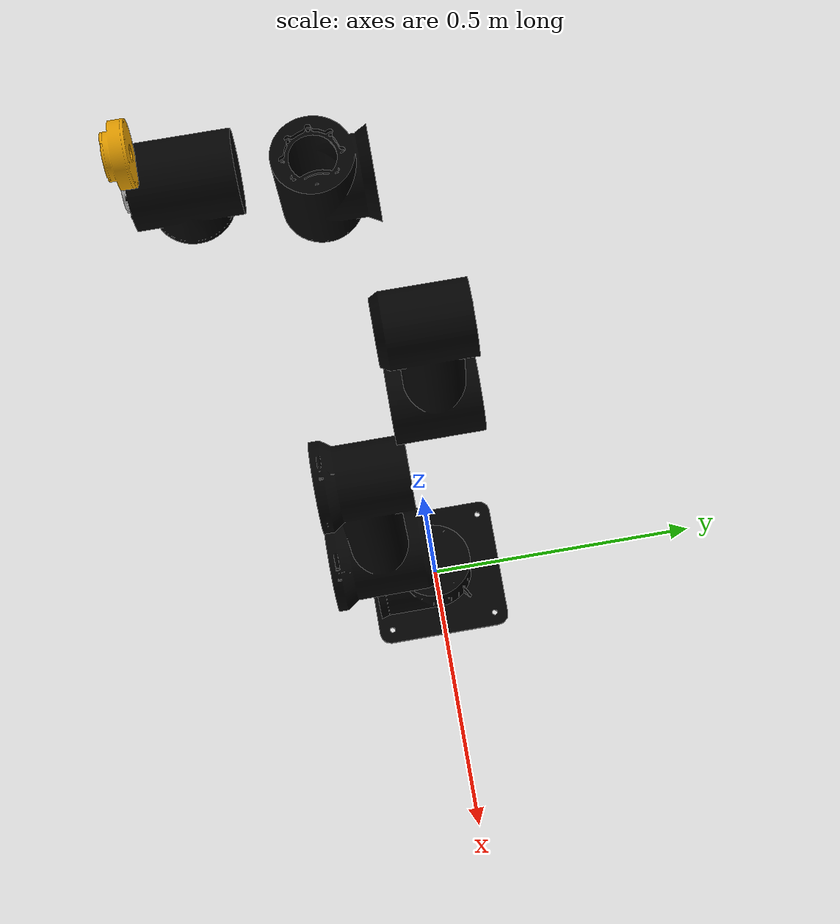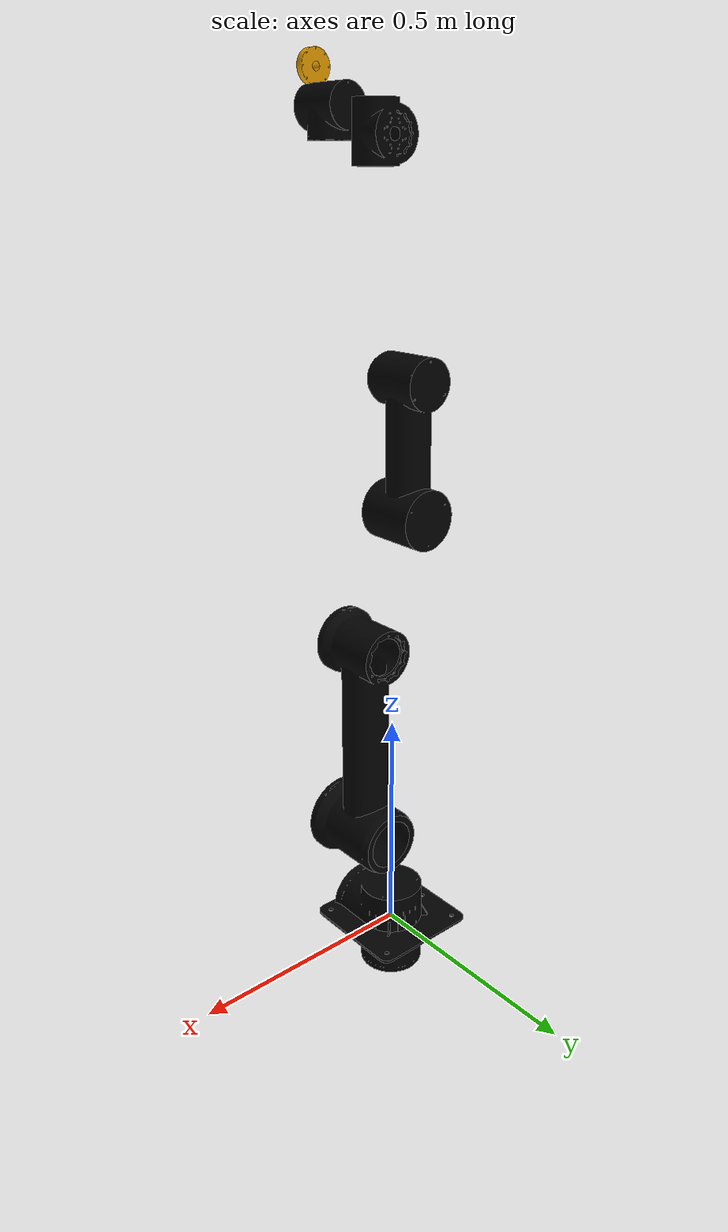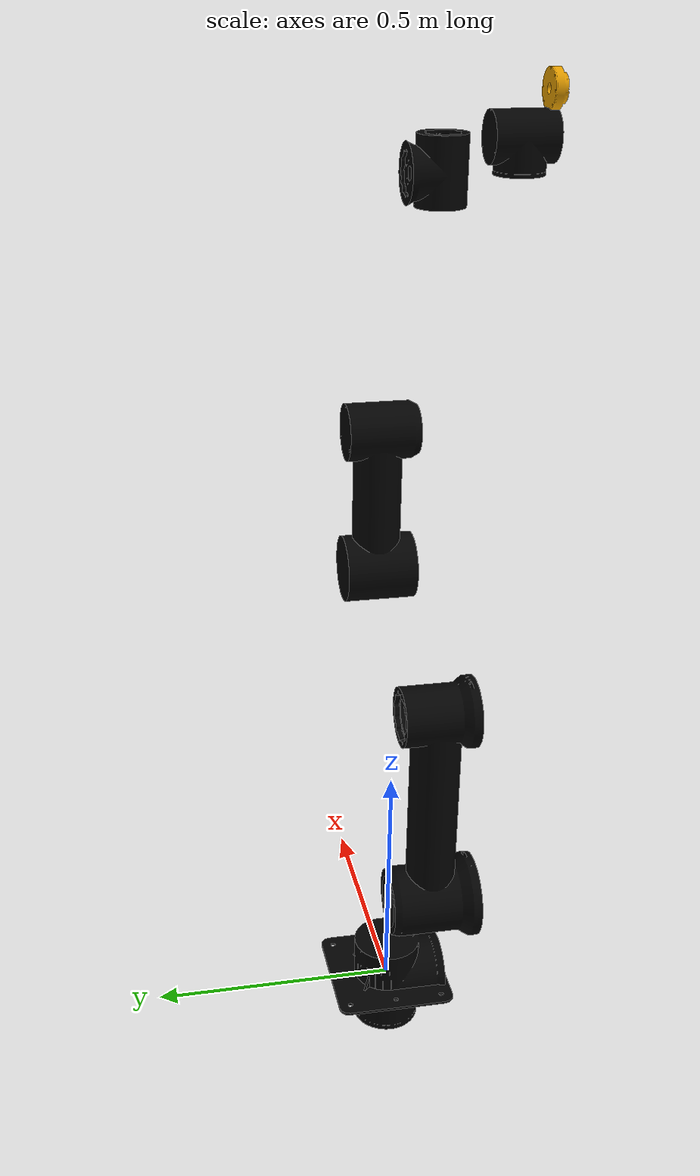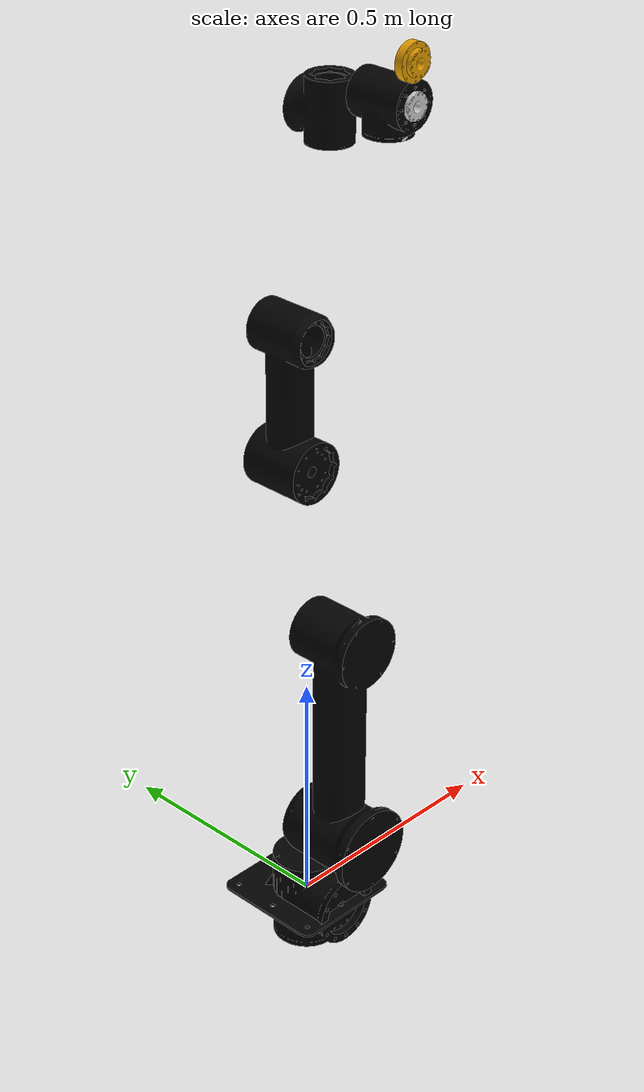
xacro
<?xml version="1.0"?>
<robot name="mcx_robot" xmlns:xacro="http://ros.org/wiki/xacro">
  <xacro:arg name="robot_ip" default="192.168.2.100"/>
  <xacro:include filename="$(find arm1650_description)/resource/urdf/arm1650.urdf"/>
  <xacro:include filename="mcx.ros2_control.xacro"/>
  <xacro:mcx_ros2_control robot_ip="$(arg robot_ip)"/>

</robot>

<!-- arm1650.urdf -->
<!-- created with Phobos 1.0.1 "Capricious Choutengan" -->
  <robot name="arm1650">

    <link name="world"/>
    <joint name="world_fixed" type="fixed">
      <origin xyz="0.0 0.0 0.0" rpy="0 0 0"/>
      <parent link="world"/>
      <child link="Base_link"/>
    </joint>

    <link name="tool"/>

    <joint name="tool_frame" type="fixed">
      <origin xyz="0.0 0.0 0.0" rpy="1.57 0 0"/>
      <parent link="Link6"/>
      <child link="tool"/>
    </joint>

    <link name="Base_link">
      <inertial>
        <origin xyz="0 0 0" rpy="0 0 0"/>
        <mass value="4.021"/>
        <inertia ixx="0.01299" ixy="0" ixz="0" iyy="0.01299" iyz="0" izz="0.02208"/>
      </inertial>
      <visual name="base_link">
        <origin xyz="0 0 0" rpy="0 0 0"/>
        <geometry>
          <mesh filename="package://arm1650_description/resource/meshes/visual/base_link.dae" scale="1.0 1.0 1.0"/>
        </geometry>
      </visual>
      <collision name="base_link">
        <origin xyz="0 0 0" rpy="0 0 0"/>
        <geometry>
          <mesh filename="package://arm1650_description/resource/meshes/collision/Base.stl" scale="1.0 1.0 1.0"/>
        </geometry>
      </collision>
    </link>

    <link name="Link3">
      <inertial>
        <origin xyz="0 0 0" rpy="0 0 0"/>
        <mass value="2.311"/>
        <inertia ixx="0.03241" ixy="0" ixz="0" iyy="0.03123" iyz="0" izz="0.00438"/>
      </inertial>
      <visual name="forearm_link">
        <origin xyz="0 0 0" rpy="1.5708 0 0"/>
        <geometry>
          <mesh filename="package://arm1650_description/resource/meshes/visual/forearm_link.dae" scale="1.0 1.0 1.0"/>
        </geometry>
      </visual>
      <collision name="forearm_link">
        <origin xyz="0 0 0.0" rpy="1.5708 0 0"/>
        <geometry>
          <mesh filename="package://arm1650_description/resource/meshes/collision/Link3.stl" scale="1.0 1.0 1.0"/>
        </geometry>
      </collision>
    </link>

    <link name="Link1">
      <inertial>
        <origin xyz="0 0 0" rpy="0 0 0"/>
        <mass value="3.661"/>
        <inertia ixx="0.01843" ixy="0" ixz="0" iyy="0.01419" iyz="0" izz="0.01341"/>
      </inertial>
      <visual name="shoulder_link">
        <origin xyz="0 0 0" rpy="0 0 0"/>
        <geometry>
          <mesh filename="package://arm1650_description/resource/meshes/visual/shoulder_link.dae" scale="1.0 1.0 1.0"/>
        </geometry>
      </visual>
      <collision name="shoulder_link">
        <origin xyz="0 0 0" rpy="0 0 0"/>
        <geometry>
          <mesh filename="package://arm1650_description/resource/meshes/collision/Link1.stl" scale="1.0 1.0 1.0"/>
        </geometry>
      </collision>
    </link>

    <link name="Link2">
      <inertial>
        <origin xyz="0 0 0" rpy="0 0 0"/>
        <mass value="8.341"/>
        <inertia ixx="0.30658" ixy="0" ixz="0" iyy="0.2933" iyz="0" izz="0.03147"/>
      </inertial>
      <visual name="upperarm_link">
        <origin xyz="0 0 0" rpy="1.5708 0 0"/>
        <geometry>
          <mesh filename="package://arm1650_description/resource/meshes/visual/upperarm_link.dae" scale="1.0 1.0 1.0"/>
        </geometry>
      </visual>
      <collision name="upperarm_link">
        <origin xyz="0 0 0" rpy="1.5708 0 0"/>
        <geometry>
          <mesh filename="package://arm1650_description/resource/meshes/collision/Link2.stl" scale="1.0 1.0 1.0"/>
        </geometry>
      </collision>
    </link>

    <link name="Link4">
      <inertial>
        <origin xyz="0 0 0" rpy="0 0 0"/>
        <mass value="1.291"/>
        <inertia ixx="0.0025" ixy="0" ixz="0" iyy="0.00208" iyz="0" izz="0.00177"/>
      </inertial>
      <visual name="wrist1_link">
        <origin xyz="0 0 0" rpy="1.5708 0 0"/>
        <geometry>
          <mesh filename="package://arm1650_description/resource/meshes/visual/wrist1_link.dae" scale="1.0 1.0 1.0"/>
        </geometry>
      </visual>
      <collision name="wrist1_link">
        <origin xyz="0 0 0" rpy="1.5708 0 0"/>
        <geometry>
          <mesh filename="package://arm1650_description/resource/meshes/collision/Link4.stl" scale="1.0 1.0 1.0"/>
        </geometry>
      </collision>
    </link>

    <link name="Link5">
      <inertial>
        <origin xyz="0 0 0" rpy="0 0 0"/>
        <mass value="1.291"/>
        <inertia ixx="0.0025" ixy="0" ixz="0" iyy="0.00208" iyz="0" izz="0.00177"/>
      </inertial>
      <visual name="wrist2_link">
        <origin xyz="0 0 0" rpy="0 0 0"/>
        <geometry>
          <mesh filename="package://arm1650_description/resource/meshes/visual/wrist2_link.dae" scale="1.0 1.0 1.0"/>
        </geometry>
      </visual>
      <collision name="wrist2_link">
        <origin xyz="0 0 0" rpy="0 0 0"/>
        <geometry>
          <mesh filename="package://arm1650_description/resource/meshes/collision/Link5.stl" scale="1.0 1.0 1.0"/>
        </geometry>
      </collision>
    </link>

    <link name="Link6">
      <inertial>
        <origin xyz="0 0 0" rpy="0 0 0"/>
        <mass value="0.001"/>
        <inertia ixx="0.001" ixy="0" ixz="0" iyy="0.001" iyz="0" izz="0.001"/>
      </inertial>
      <visual name="wrist3_link">
        <origin xyz="0 0 0" rpy="0 0 0"/>
        <geometry>
          <mesh filename="package://arm1650_description/resource/meshes/visual/wrist3_link.dae" scale="1.0 1.0 1.0"/>
        </geometry>
      </visual>
      <collision name="wrist3_link">
        <origin xyz="0 0 0" rpy="0 0 0"/>
        <geometry>
          <mesh filename="package://arm1650_description/resource/meshes/collision/Link6.stl" scale="1.0 1.0 1.0"/>
        </geometry>
      </collision>
    </link>

    <joint name="Joint1" type="revolute">
      <origin xyz="0 0 0" rpy="0 0 0"/>
      <parent link="Base_link"/>
      <child link="Link1"/>
      <axis xyz="0 0 1.0"/>
      <limit lower="-3.14" upper="3.14" effort="0" velocity="1.745329251994"/>
    </joint>

    <joint name="Joint2" type="revolute">
      <origin xyz="0 0 0.190" rpy="-1.5708 0 0"/>
      <parent link="Link1"/>
      <child link="Link2"/>
      <axis xyz="0 0 1.0"/>
      <limit lower="-3.14" upper="3.14" effort="0" velocity="1.745329251994"/>
    </joint>

    <joint name="Joint3" type="revolute">
      <origin xyz="0 -0.8 0" rpy="0 0 0"/>
      <parent link="Link2"/>
      <child link="Link3"/>
      <axis xyz="0 0 1.0"/>
      <limit lower="-3.14" upper="3.14" effort="0" velocity="2.617993877992"/>
    </joint>

    <joint name="Joint4" type="revolute">
      <origin xyz="0 -0.72 0" rpy="0 0 0"/>
      <parent link="Link3"/>
      <child link="Link4"/>
      <axis xyz="0 0 1.0"/>
      <limit lower="-3.14" upper="3.14" effort="0" velocity="2.617993877992"/>
    </joint>

    <joint name="Joint5" type="revolute">
      <origin xyz="0 0 -0.191" rpy="1.5708 0 0"/>
      <parent link="Link4"/>
      <child link="Link5"/>
      <axis xyz="0 0 1.0"/>
      <limit lower="-3.14" upper="3.14" effort="0" velocity="2.617993877992"/>
    </joint>

    <joint name="Joint6" type="revolute">
      <origin xyz="0 -0.069 0.130" rpy="0 0 0"/>
      <parent link="Link5"/>
      <child link="Link6"/>
      <axis xyz="0 1.0 0"/>
      <limit lower="-3.14" upper="3.14" effort="0" velocity="2.617993877992"/>
    </joint>

  </robot>
